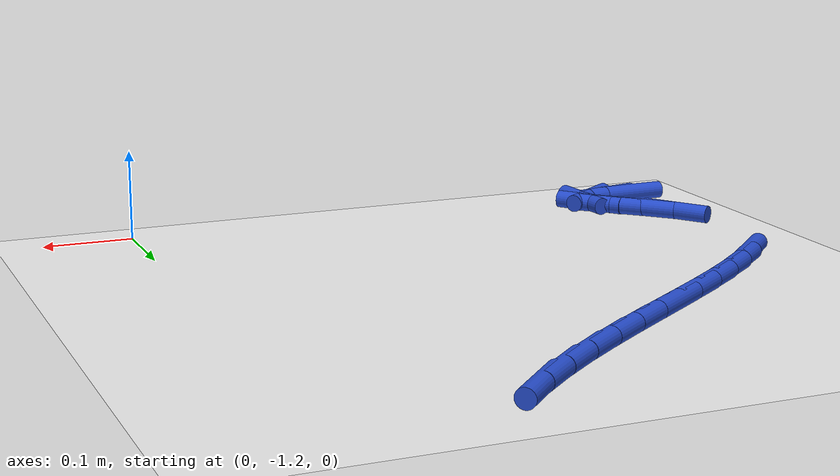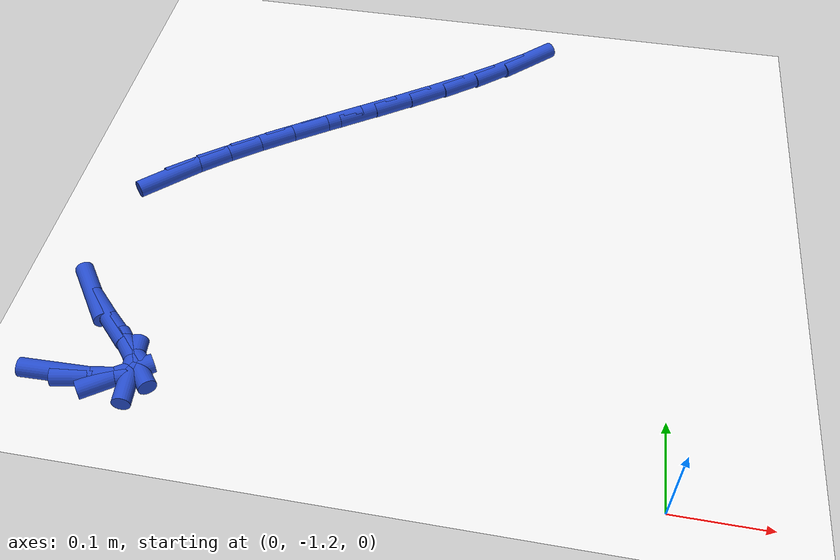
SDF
<sdf version="1.6">
 <world name="default">
  <model name="ground_plane">
   <static>1</static>
   <link name="link">
    <collision name="collision">
     <geometry><plane><normal>0 0 1</normal><size>100 100</size></plane></geometry>
     <surface><friction><ode><mu>100</mu><mu2>50</mu2></ode></friction></surface>
    </collision>
    <visual name="visual">
     <cast_shadows>0</cast_shadows>
     <geometry><plane><normal>0 0 1</normal><size>100 100</size></plane></geometry>
     <material>
      <script><uri>file://media/materials/scripts/gazebo.material</uri><name>Gazebo/WhiteGlow</name></script>
     </material>
    </visual>
   </link>
  </model>
  <model name="line">
   <link name="link_199">
    <pose>-0.6127697325104253 -1.1574601270354088 0.01 0 1.57 0.023472154227750928</pose>
    <collision name="collision">
     <geometry><cylinder><radius>0.01</radius><length>0.08</length></cylinder></geometry>
    </collision>
    <visual name="visual">
     <material>
      <script><name>Gazebo/Blue</name><uri>file://media/materials/scripts/gazebo.material</uri></script>
     </material>
     <geometry><cylinder><radius>0.01</radius><length>0.08</length></cylinder></geometry>
    </visual>
   </link>
   <link name="link_200">
    <pose>-0.5773264855599525 -1.156628044861363 0.01 0 1.57 0.17615735012870393</pose>
    <collision name="collision">
     <geometry><cylinder><radius>0.01</radius><length>0.08</length></cylinder></geometry>
    </collision>
    <visual name="visual">
     <material>
      <script><name>Gazebo/Blue</name><uri>file://media/materials/scripts/gazebo.material</uri></script>
     </material>
     <geometry><cylinder><radius>0.01</radius><length>0.08</length></cylinder></geometry>
    </visual>
   </link>
   <link name="link_201">
    <pose>-0.5521657473105693 -1.1521493732602714 0.01 0 1.57 0.6159610286283805</pose>
    <collision name="collision">
     <geometry><cylinder><radius>0.01</radius><length>0.08</length></cylinder></geometry>
    </collision>
    <visual name="visual">
     <material>
      <script><name>Gazebo/Blue</name><uri>file://media/materials/scripts/gazebo.material</uri></script>
     </material>
     <geometry><cylinder><radius>0.01</radius><length>0.08</length></cylinder></geometry>
    </visual>
   </link>
   <link name="link_202">
    <pose>-0.5393183210141548 -1.1430555922625678 0.01 0 1.57 -1.4691753116861406</pose>
    <collision name="collision">
     <geometry><cylinder><radius>0.01</radius><length>0.08</length></cylinder></geometry>
    </collision>
    <visual name="visual">
     <material>
      <script><name>Gazebo/Blue</name><uri>file://media/materials/scripts/gazebo.material</uri></script>
     </material>
     <geometry><cylinder><radius>0.01</radius><length>0.08</length></cylinder></geometry>
    </visual>
   </link>
   <link name="link_203">
    <pose>-0.5408150099225887 -1.128378181898683 0.01 0 1.57 -0.8819853242677755</pose>
    <collision name="collision">
     <geometry><cylinder><radius>0.01</radius><length>0.08</length></cylinder></geometry>
    </collision>
    <visual name="visual">
     <material>
      <script><name>Gazebo/Blue</name><uri>file://media/materials/scripts/gazebo.material</uri></script>
     </material>
     <geometry><cylinder><radius>0.01</radius><length>0.08</length></cylinder></geometry>
    </visual>
   </link>
   <link name="link_204">
    <pose>-0.5581594974896072 -1.107312151381482 0.01 0 1.57 -0.7538606509158692</pose>
    <collision name="collision">
     <geometry><cylinder><radius>0.01</radius><length>0.08</length></cylinder></geometry>
    </collision>
    <visual name="visual">
     <material>
      <script><name>Gazebo/Blue</name><uri>file://media/materials/scripts/gazebo.material</uri></script>
     </material>
     <geometry><cylinder><radius>0.01</radius><length>0.08</length></cylinder></geometry>
    </visual>
   </link>
   <link name="link_205">
    <pose>-0.5859924541269075 -1.0811816329727826 0.01 0 1.57 -0.7893306337697499</pose>
    <collision name="collision">
     <geometry><cylinder><radius>0.01</radius><length>0.08</length></cylinder></geometry>
    </collision>
    <visual name="visual">
     <material>
      <script><name>Gazebo/Blue</name><uri>file://media/materials/scripts/gazebo.material</uri></script>
     </material>
     <geometry><cylinder><radius>0.01</radius><length>0.08</length></cylinder></geometry>
    </visual>
   </link>
   <link name="link_206">
    <pose>-0.614150676262514 -1.052801072603987 0.01 0 1.57 -0.9519417337631559</pose>
    <collision name="collision">
     <geometry><cylinder><radius>0.01</radius><length>0.08</length></cylinder></geometry>
    </collision>
    <visual name="visual">
     <material>
      <script><name>Gazebo/Blue</name><uri>file://media/materials/scripts/gazebo.material</uri></script>
     </material>
     <geometry><cylinder><radius>0.01</radius><length>0.08</length></cylinder></geometry>
    </visual>
   </link>
   <link name="link_213">
    <pose>-0.5912720445420708 -0.8621032653378393 0.01 0 1.57 0.7625547628249225</pose>
    <collision name="collision">
     <geometry><cylinder><radius>0.01</radius><length>0.08</length></cylinder></geometry>
    </collision>
    <visual name="visual">
     <material>
      <script><name>Gazebo/Blue</name><uri>file://media/materials/scripts/gazebo.material</uri></script>
     </material>
     <geometry><cylinder><radius>0.01</radius><length>0.08</length></cylinder></geometry>
    </visual>
   </link>
   <link name="link_214">
    <pose>-0.5635318716496965 -0.8356023587181132 0.01 0 1.57 0.6970542277678559</pose>
    <collision name="collision">
     <geometry><cylinder><radius>0.01</radius><length>0.08</length></cylinder></geometry>
    </collision>
    <visual name="visual">
     <material>
      <script><name>Gazebo/Blue</name><uri>file://media/materials/scripts/gazebo.material</uri></script>
     </material>
     <geometry><cylinder><radius>0.01</radius><length>0.08</length></cylinder></geometry>
    </visual>
   </link>
   <link name="link_215">
    <pose>-0.5318458092918609 -0.8090727220164388 0.01 0 1.57 0.651678690362122</pose>
    <collision name="collision">
     <geometry><cylinder><radius>0.01</radius><length>0.08</length></cylinder></geometry>
    </collision>
    <visual name="visual">
     <material>
      <script><name>Gazebo/Blue</name><uri>file://media/materials/scripts/gazebo.material</uri></script>
     </material>
     <geometry><cylinder><radius>0.01</radius><length>0.08</length></cylinder></geometry>
    </visual>
   </link>
   <link name="link_216">
    <pose>-0.4969378773911041 -0.7824429754325486 0.01 0 1.57 0.6217140577848639</pose>
    <collision name="collision">
     <geometry><cylinder><radius>0.01</radius><length>0.08</length></cylinder></geometry>
    </collision>
    <visual name="visual">
     <material>
      <script><name>Gazebo/Blue</name><uri>file://media/materials/scripts/gazebo.material</uri></script>
     </material>
     <geometry><cylinder><radius>0.01</radius><length>0.08</length></cylinder></geometry>
    </visual>
   </link>
   <link name="link_217">
    <pose>-0.45953209586996485 -0.7556417391661726 0.01 0 1.57 0.6041588772874896</pose>
    <collision name="collision">
     <geometry><cylinder><radius>0.01</radius><length>0.08</length></cylinder></geometry>
    </collision>
    <visual name="visual">
     <material>
      <script><name>Gazebo/Blue</name><uri>file://media/materials/scripts/gazebo.material</uri></script>
     </material>
     <geometry><cylinder><radius>0.01</radius><length>0.08</length></cylinder></geometry>
    </visual>
   </link>
   <link name="link_218">
    <pose>-0.4203524846509821 -0.7285976334170423 0.01 0 1.57 0.5972165804483063</pose>
    <collision name="collision">
     <geometry><cylinder><radius>0.01</radius><length>0.08</length></cylinder></geometry>
    </collision>
    <visual name="visual">
     <material>
      <script><name>Gazebo/Blue</name><uri>file://media/materials/scripts/gazebo.material</uri></script>
     </material>
     <geometry><cylinder><radius>0.01</radius><length>0.08</length></cylinder></geometry>
    </visual>
   </link>
   <link name="link_219">
    <pose>-0.38012306365669446 -0.7012392783848881 0.01 0 1.57 0.599977687491619</pose>
    <collision name="collision">
     <geometry><cylinder><radius>0.01</radius><length>0.08</length></cylinder></geometry>
    </collision>
    <visual name="visual">
     <material>
      <script><name>Gazebo/Blue</name><uri>file://media/materials/scripts/gazebo.material</uri></script>
     </material>
     <geometry><cylinder><radius>0.01</radius><length>0.08</length></cylinder></geometry>
    </visual>
   </link>
   <link name="link_220">
    <pose>-0.33956785280964136 -0.6734952942694411 0.01 0 1.57 0.6122469981074603</pose>
    <collision name="collision">
     <geometry><cylinder><radius>0.01</radius><length>0.08</length></cylinder></geometry>
    </collision>
    <visual name="visual">
     <material>
      <script><name>Gazebo/Blue</name><uri>file://media/materials/scripts/gazebo.material</uri></script>
     </material>
     <geometry><cylinder><radius>0.01</radius><length>0.08</length></cylinder></geometry>
    </visual>
   </link>
   <link name="link_221">
    <pose>-0.29941087203236166 -0.6452943012704325 0.01 0 1.57 0.6344777409433258</pose>
    <collision name="collision">
     <geometry><cylinder><radius>0.01</radius><length>0.08</length></cylinder></geometry>
    </collision>
    <visual name="visual">
     <material>
      <script><name>Gazebo/Blue</name><uri>file://media/materials/scripts/gazebo.material</uri></script>
     </material>
     <geometry><cylinder><radius>0.01</radius><length>0.08</length></cylinder></geometry>
    </visual>
   </link>
   <link name="link_222">
    <pose>-0.26037614124739444 -0.6165649195875931 0.01 0 1.57 0.6677895925499171</pose>
    <collision name="collision">
     <geometry><cylinder><radius>0.01</radius><length>0.08</length></cylinder></geometry>
    </collision>
    <visual name="visual">
     <material>
      <script><name>Gazebo/Blue</name><uri>file://media/materials/scripts/gazebo.material</uri></script>
     </material>
     <geometry><cylinder><radius>0.01</radius><length>0.08</length></cylinder></geometry>
    </visual>
   </link>
   <link name="link_223">
    <pose>-0.2231876803772776 -0.5872357694206533 0.01 0 1.57 0.7140557844164152</pose>
    <collision name="collision">
     <geometry><cylinder><radius>0.01</radius><length>0.08</length></cylinder></geometry>
    </collision>
    <visual name="visual">
     <material>
      <script><name>Gazebo/Blue</name><uri>file://media/materials/scripts/gazebo.material</uri></script>
     </material>
     <geometry><cylinder><radius>0.01</radius><length>0.08</length></cylinder></geometry>
    </visual>
   </link>
   <link name="link_224">
    <pose>-0.18856950934455227 -0.5572354709693453 0.01 0 1.57 0.7760369781160612</pose>
    <collision name="collision">
     <geometry><cylinder><radius>0.01</radius><length>0.08</length></cylinder></geometry>
    </collision>
    <visual name="visual">
     <material>
      <script><name>Gazebo/Blue</name><uri>file://media/materials/scripts/gazebo.material</uri></script>
     </material>
     <geometry><cylinder><radius>0.01</radius><length>0.08</length></cylinder></geometry>
    </visual>
   </link>
  </model>
 </world>
</sdf>
